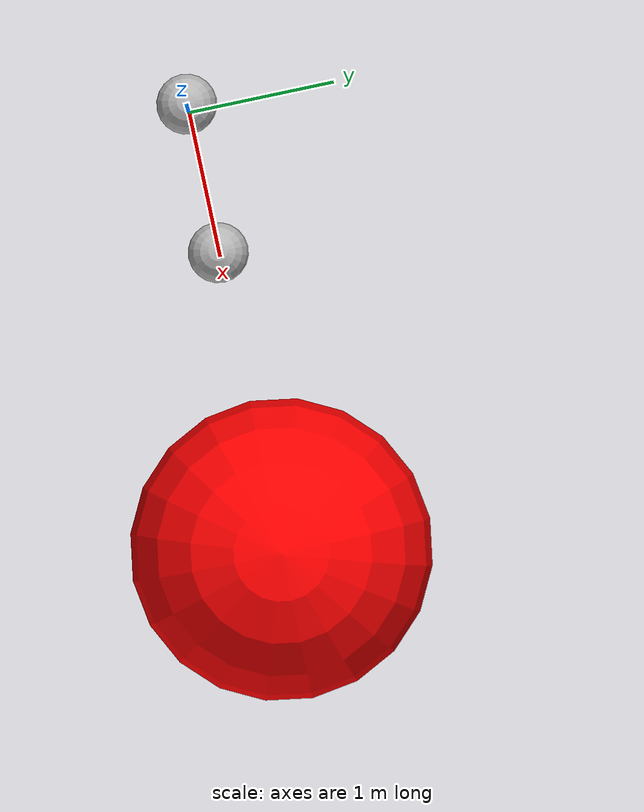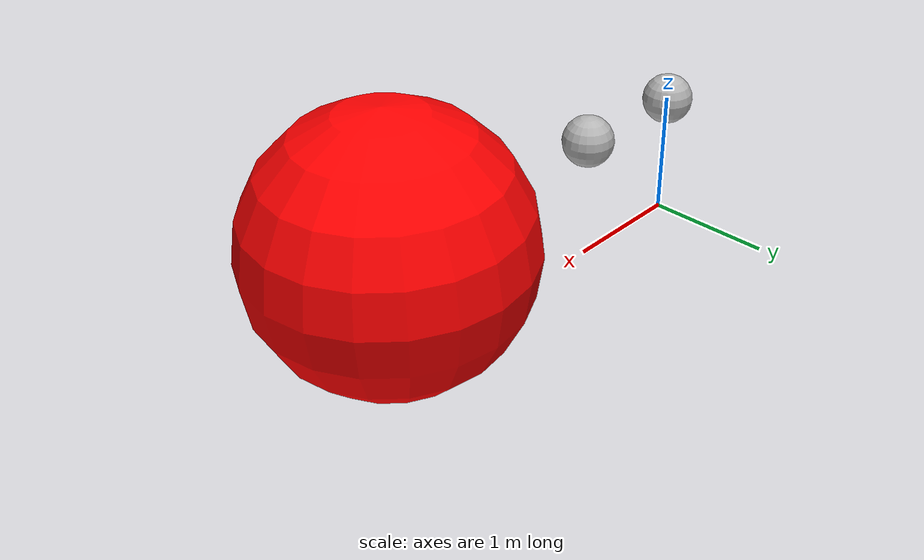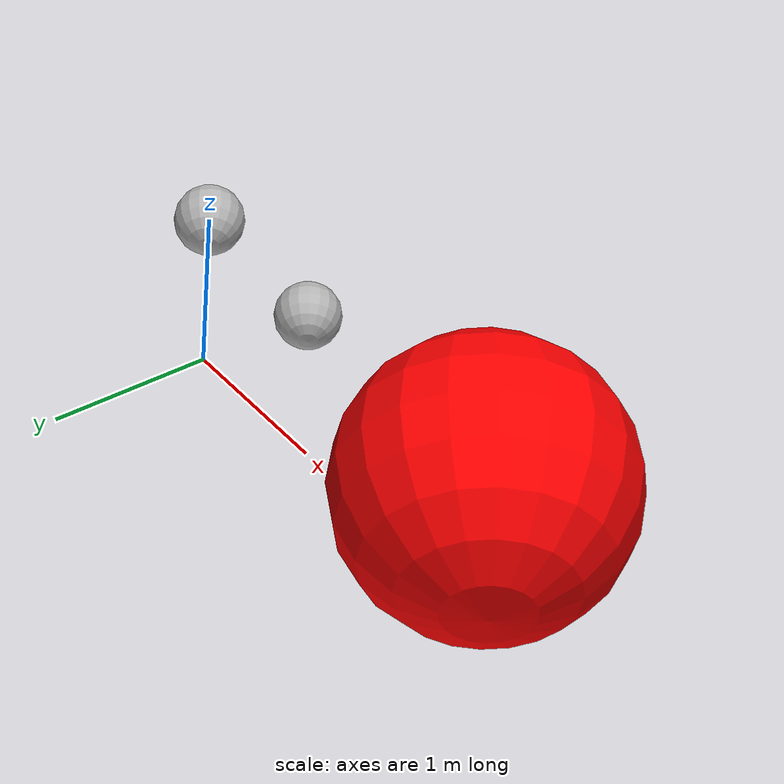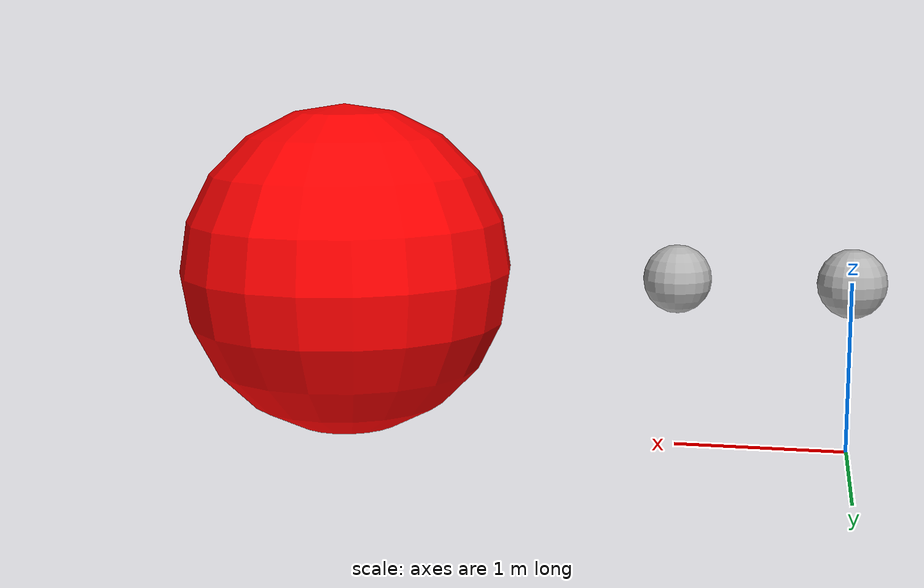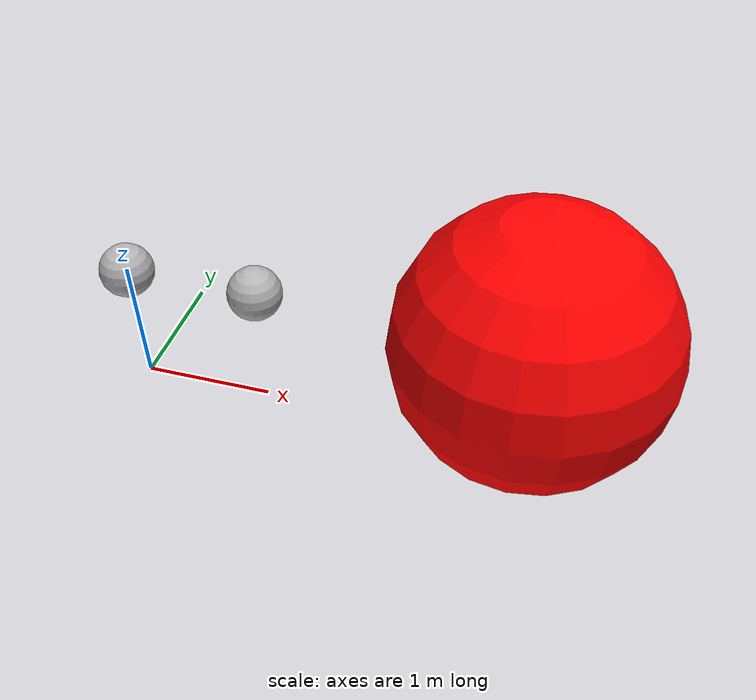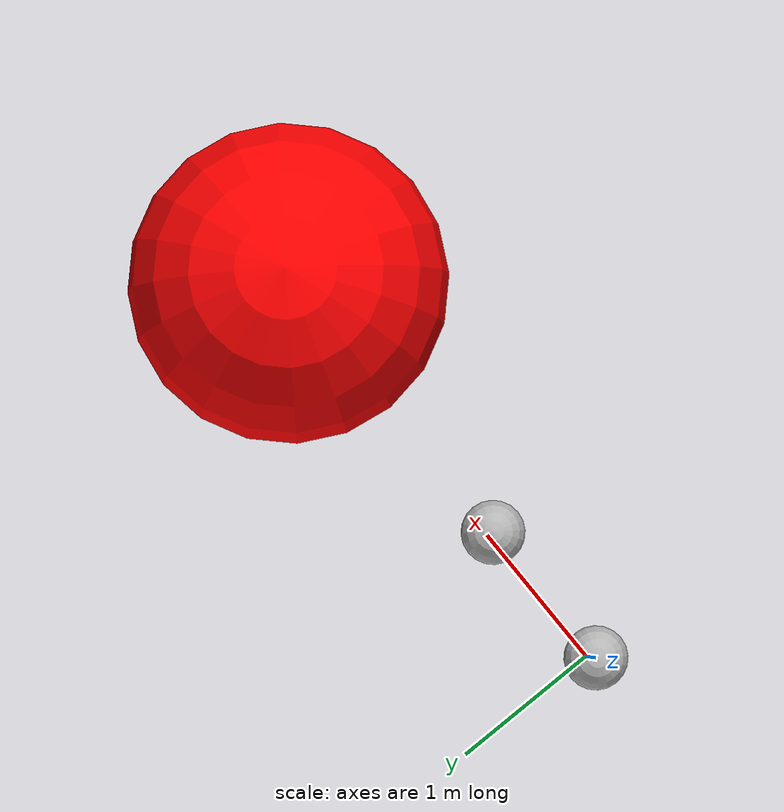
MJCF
<mujoco model="create_find_delete_attach_test">
    <option timestep="0.005" gravity="0 0 -9.81" />
    <worldbody>

        <body name="object_1" pos="0 0 1">
            <geom type="sphere" size="0.2" density="1" solref="0.01 1" solimp="0.9999 0.9999 0.001" rgba="0.7 0.7 0.7 1" />
            <joint name="object_1_joint" type="free" />
        </body>

        <body name="object_2" pos="1 0 1">
            <geom type="sphere" size="0.2" density="1" solref="0.01 1" solimp="0.9999 0.9999 0.001" rgba="0.7 0.7 0.7 1" />
            <joint name="object_2_joint" type="free" />
        </body>

        <body name="sphere" pos="3.0 0.0 1.0"><geom type="sphere" size="1.0" rgba="1 0 0 1" /></body></worldbody>
</mujoco>
